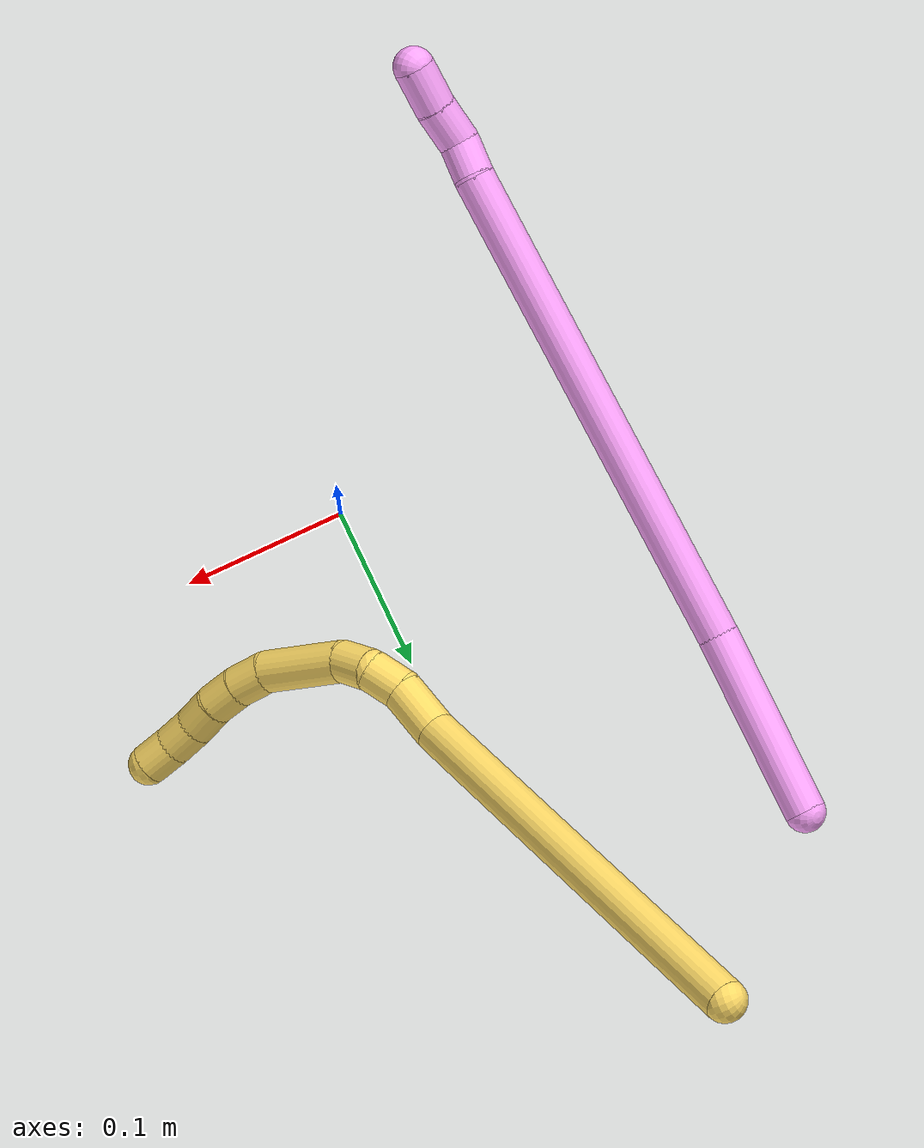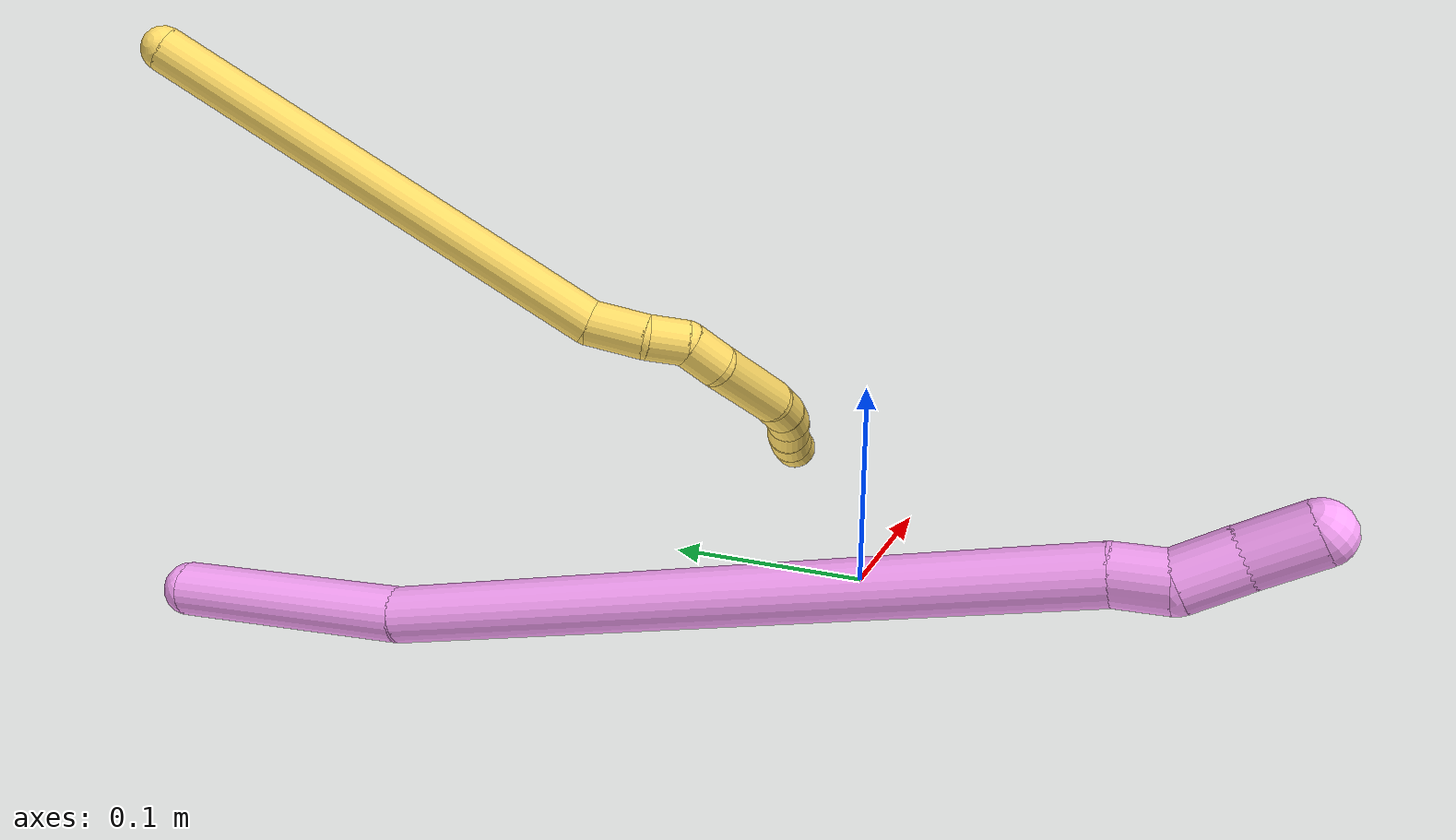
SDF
<sdf version="1.7">
 <world name="default">
  <model name="photoneo_s_sensor">
   <static>1</static>
   <pose>0 0 2 1.57079 1.57079 3.14159</pose>
   <link name="link">
    <inertial><mass>0.1</mass></inertial>
    <sensor name="sensor" type="depth">
     <update_rate>30</update_rate>
     <camera>
      <horizontal_fov>1.22</horizontal_fov>
      <image><width>1920</width><height>1200</height><format>B8G8R8</format></image>
      <clip><near>0.1</near><far>4</far></clip>
      <depth_camera><output>points</output></depth_camera>
     </camera>
     <plugin name="camera_plugin" filename="libgazebo_ros_depth_camera.so">
      <baseline>0.2</baseline>
      <alwaysOn>1</alwaysOn>
      <updateRate>0.0</updateRate>
      <cameraName>camera_ir</cameraName>
      <imageTopicName>/camera/color/image_raw</imageTopicName>
      <cameraInfoTopicName>/camera/color/camera_info</cameraInfoTopicName>
      <depthImageTopicName>/camera/depth/image_raw</depthImageTopicName>
      <depthImageCameraInfoTopicName>/camera/depth/camera_info</depthImageCameraInfoTopicName>
      <pointCloudTopicName>/camera/depth/points</pointCloudTopicName>
      <frameName>fr_optical</frameName>
      <pointCloudCutoff>0.1</pointCloudCutoff>
      <pointCloudCutoffMax>2.0</pointCloudCutoffMax>
      <distortionK1>0</distortionK1>
      <distortionK2>0</distortionK2>
      <distortionK3>0</distortionK3>
      <distortionT1>0</distortionT1>
      <distortionT2>0</distortionT2>
      <CxPrime>0</CxPrime>
      <Cx>0</Cx>
      <Cy>0</Cy>
      <focalLength>0</focalLength>
      <hackBaseline>0</hackBaseline>
     </plugin>
    </sensor>
   </link>
  </model>
  <model name="bin">
   <static>1</static>
   <link name="bottom">
    <collision name="collision-bottom">
     <pose>0 0 -0.01 0 -0 0</pose>
     <geometry><box><size>0.8 0.6 0.02</size></box></geometry>
     <surface>
      <friction><ode><mu>100</mu><mu2>100</mu2></ode></friction>
      <contact><collide_bitmask>65535</collide_bitmask></contact>
     </surface>
    </collision>
   </link>
   <link name="west_wall">
    <collision name="collision-west_wall">
     <pose>-0.41 0 0.1 0 -0 0</pose>
     <geometry><box><size>0.02 0.6 0.2</size></box></geometry>
     <surface>
      <friction><ode><mu>100</mu><mu2>100</mu2></ode></friction>
      <contact><collide_bitmask>65535</collide_bitmask></contact>
     </surface>
    </collision>
   </link>
   <link name="east_wall">
    <collision name="collision-east_wall">
     <pose>0.41 0 0.1 0 -0 0</pose>
     <geometry><box><size>0.02 0.6 0.2</size></box></geometry>
     <surface>
      <friction><ode><mu>100</mu><mu2>100</mu2></ode></friction>
      <contact><collide_bitmask>65535</collide_bitmask></contact>
     </surface>
    </collision>
   </link>
   <link name="south_wall">
    <collision name="collision-south_wall">
     <pose>0 -0.31 0.1 0 -0 0</pose>
     <geometry><box><size>0.8 0.02 0.2</size></box></geometry>
     <surface>
      <friction><ode><mu>100</mu><mu2>100</mu2></ode></friction>
      <contact><collide_bitmask>65535</collide_bitmask></contact>
     </surface>
    </collision>
   </link>
   <link name="north_wall">
    <collision name="collision-north_wall">
     <pose>0 0.31 0.1 0 -0 0</pose>
     <geometry><box><size>0.8 0.02 0.2</size></box></geometry>
     <surface>
      <friction><ode><mu>100</mu><mu2>100</mu2></ode></friction>
      <contact><collide_bitmask>65535</collide_bitmask></contact>
     </surface>
    </collision>
   </link>
  </model>
  <model name="4">
   <static>0</static>
   <link name="4">
    <collision name="collision-cylinder-e_1_1_4">
     <pose>0.042683 -0.023674 -0.031868 2.50268 0.821595 1.84259</pose>
     <geometry><cylinder><radius>0.0125</radius><length>0.116582</length></cylinder></geometry>
     <surface>
      <friction><ode><mu>1.16</mu><mu2>1.16</mu2><slip1>0</slip1><slip2>0</slip2></ode></friction>
      <contact><ode><kp>1e+06</kp><kd>1</kd><max_vel>0</max_vel><min_depth>0.001</min_depth></ode></contact>
     </surface>
    </collision>
    <visual name="visual-cylinder-e_1_1_4">
     <pose>0.042683 -0.023674 -0.031868 2.50268 0.821595 1.84259</pose>
     <geometry><cylinder><radius>0.0125</radius><length>0.116582</length></cylinder></geometry>
     <material><ambient>1 0.65098 0.996078 1</ambient></material>
    </visual>
    <collision name="collision-cylinder-e_2_4_5">
     <pose>0.212704 -0.099002 -0.132601 2.49803 0.976343 2.02043</pose>
     <geometry><cylinder><radius>0.0125</radius><length>0.307413</length></cylinder></geometry>
     <surface>
      <friction><ode><mu>1.16</mu><mu2>1.16</mu2><slip1>0</slip1><slip2>0</slip2></ode></friction>
      <contact><ode><kp>1e+06</kp><kd>1</kd><max_vel>0</max_vel><min_depth>0.001</min_depth></ode></contact>
     </surface>
    </collision>
    <visual name="visual-cylinder-e_2_4_5">
     <pose>0.212704 -0.099002 -0.132601 2.49803 0.976343 2.02043</pose>
     <geometry><cylinder><radius>0.0125</radius><length>0.307413</length></cylinder></geometry>
     <material><ambient>1 0.65098 0.996078 1</ambient></material>
    </visual>
    <collision name="collision-cylinder-e_3_5_6">
     <pose>0.348038 -0.155832 -0.20747 2.43023 0.789694 1.68549</pose>
     <geometry><cylinder><radius>0.0125</radius><length>0.022516</length></cylinder></geometry>
     <surface>
      <friction><ode><mu>1.16</mu><mu2>1.16</mu2><slip1>0</slip1><slip2>0</slip2></ode></friction>
      <contact><ode><kp>1e+06</kp><kd>1</kd><max_vel>0</max_vel><min_depth>0.001</min_depth></ode></contact>
     </surface>
    </collision>
    <visual name="visual-cylinder-e_3_5_6">
     <pose>0.348038 -0.155832 -0.20747 2.43023 0.789694 1.68549</pose>
     <geometry><cylinder><radius>0.0125</radius><length>0.022516</length></cylinder></geometry>
     <material><ambient>1 0.65098 0.996078 1</ambient></material>
    </visual>
    <collision name="collision-cylinder-e_4_6_7">
     <pose>0.36826 -0.16281 -0.216935 2.66135 1.26179 2.49476</pose>
     <geometry><cylinder><radius>0.0125</radius><length>0.025669</length></cylinder></geometry>
     <surface>
      <friction><ode><mu>1.16</mu><mu2>1.16</mu2><slip1>0</slip1><slip2>0</slip2></ode></friction>
      <contact><ode><kp>1e+06</kp><kd>1</kd><max_vel>0</max_vel><min_depth>0.001</min_depth></ode></contact>
     </surface>
    </collision>
    <visual name="visual-cylinder-e_4_6_7">
     <pose>0.36826 -0.16281 -0.216935 2.66135 1.26179 2.49476</pose>
     <geometry><cylinder><radius>0.0125</radius><length>0.025669</length></cylinder></geometry>
     <material><ambient>1 0.65098 0.996078 1</ambient></material>
    </visual>
    <collision name="collision-cylinder-e_5_7_2">
     <pose>0.393629 -0.167976 -0.22347 2.31122 1.23708 2.0325</pose>
     <geometry><cylinder><radius>0.0125</radius><length>0.027819</length></cylinder></geometry>
     <surface>
      <friction><ode><mu>1.16</mu><mu2>1.16</mu2><slip1>0</slip1><slip2>0</slip2></ode></friction>
      <contact><ode><kp>1e+06</kp><kd>1</kd><max_vel>0</max_vel><min_depth>0.001</min_depth></ode></contact>
     </surface>
    </collision>
    <visual name="visual-cylinder-e_5_7_2">
     <pose>0.393629 -0.167976 -0.22347 2.31122 1.23708 2.0325</pose>
     <geometry><cylinder><radius>0.0125</radius><length>0.027819</length></cylinder></geometry>
     <material><ambient>1 0.65098 0.996078 1</ambient></material>
    </visual>
    <collision name="collision-sphere-2">
     <pose>0.406771 -0.17134 -0.226544 0 -0 0</pose>
     <geometry><sphere><radius>0.0125</radius></sphere></geometry>
     <surface>
      <friction><ode><mu>1.16</mu><mu2>1.16</mu2><slip1>0</slip1><slip2>0</slip2></ode></friction>
      <contact><ode><kp>1e+06</kp><kd>1</kd><max_vel>0</max_vel><min_depth>0.001</min_depth></ode></contact>
     </surface>
    </collision>
    <visual name="visual-sphere-2">
     <pose>0.406771 -0.17134 -0.226544 0 -0 0</pose>
     <geometry><sphere><radius>0.0125</radius></sphere></geometry>
     <material><ambient>1 0.65098 0.996078 1</ambient></material>
    </visual>
    <collision name="collision-sphere-7">
     <pose>0.380486 -0.164613 -0.220397 0 -0 0</pose>
     <geometry><sphere><radius>0.0125</radius></sphere></geometry>
     <surface>
      <friction><ode><mu>1.16</mu><mu2>1.16</mu2><slip1>0</slip1><slip2>0</slip2></ode></friction>
      <contact><ode><kp>1e+06</kp><kd>1</kd><max_vel>0</max_vel><min_depth>0.001</min_depth></ode></contact>
     </surface>
    </collision>
    <visual name="visual-sphere-7">
     <pose>0.380486 -0.164613 -0.220397 0 -0 0</pose>
     <geometry><sphere><radius>0.0125</radius></sphere></geometry>
     <material><ambient>1 0.65098 0.996078 1</ambient></material>
    </visual>
    <collision name="collision-sphere-6">
     <pose>0.356033 -0.161006 -0.213474 0 -0 0</pose>
     <geometry><sphere><radius>0.0125</radius></sphere></geometry>
     <surface>
      <friction><ode><mu>1.16</mu><mu2>1.16</mu2><slip1>0</slip1><slip2>0</slip2></ode></friction>
      <contact><ode><kp>1e+06</kp><kd>1</kd><max_vel>0</max_vel><min_depth>0.001</min_depth></ode></contact>
     </surface>
    </collision>
    <visual name="visual-sphere-6">
     <pose>0.356033 -0.161006 -0.213474 0 -0 0</pose>
     <geometry><sphere><radius>0.0125</radius></sphere></geometry>
     <material><ambient>1 0.65098 0.996078 1</ambient></material>
    </visual>
    <collision name="collision-sphere-5">
     <pose>0.340044 -0.150657 -0.201466 0 -0 0</pose>
     <geometry><sphere><radius>0.0125</radius></sphere></geometry>
     <surface>
      <friction><ode><mu>1.16</mu><mu2>1.16</mu2><slip1>0</slip1><slip2>0</slip2></ode></friction>
      <contact><ode><kp>1e+06</kp><kd>1</kd><max_vel>0</max_vel><min_depth>0.001</min_depth></ode></contact>
     </surface>
    </collision>
    <visual name="visual-sphere-5">
     <pose>0.340044 -0.150657 -0.201466 0 -0 0</pose>
     <geometry><sphere><radius>0.0125</radius></sphere></geometry>
     <material><ambient>1 0.65098 0.996078 1</ambient></material>
    </visual>
    <collision name="collision-sphere-1">
     <geometry><sphere><radius>0.0125</radius></sphere></geometry>
     <surface>
      <friction><ode><mu>1.16</mu><mu2>1.16</mu2><slip1>0</slip1><slip2>0</slip2></ode></friction>
      <contact><ode><kp>1e+06</kp><kd>1</kd><max_vel>0</max_vel><min_depth>0.001</min_depth></ode></contact>
     </surface>
    </collision>
    <visual name="visual-sphere-1">
     <geometry><sphere><radius>0.0125</radius></sphere></geometry>
     <material><ambient>1 0.65098 0.996078 1</ambient></material>
    </visual>
    <collision name="collision-sphere-4">
     <pose>0.085365 -0.047347 -0.063737 0 -0 0</pose>
     <geometry><sphere><radius>0.0125</radius></sphere></geometry>
     <surface>
      <friction><ode><mu>1.16</mu><mu2>1.16</mu2><slip1>0</slip1><slip2>0</slip2></ode></friction>
      <contact><ode><kp>1e+06</kp><kd>1</kd><max_vel>0</max_vel><min_depth>0.001</min_depth></ode></contact>
     </surface>
    </collision>
    <visual name="visual-sphere-4">
     <pose>0.085365 -0.047347 -0.063737 0 -0 0</pose>
     <geometry><sphere><radius>0.0125</radius></sphere></geometry>
     <material><ambient>1 0.65098 0.996078 1</ambient></material>
    </visual>
    <inertial>
     <pose>0.197208 -0.091111 -0.121871 0 -0 0</pose>
     <mass>0.5</mass>
     <inertia>
      <ixx>0.000733</ixx>
      <ixy>0</ixy>
      <ixz>0</ixz>
      <iyy>0.003334</iyy>
      <iyz>0</iyz>
      <izz>-0.001265</izz>
     </inertia>
    </inertial>
   </link>
   <pose>-0.173255 0.280434 0.012441 0.188977 -0.755002 -1.25249</pose>
  </model>
  <model name="5">
   <static>0</static>
   <link name="5">
    <collision name="collision-cylinder-e_1_1_4">
     <pose>0.092211 -0.065909 -0.071535 2.39711 0.758708 1.59162</pose>
     <geometry><cylinder><radius>0.0125</radius><length>0.26806</length></cylinder></geometry>
     <surface>
      <friction><ode><mu>1.16</mu><mu2>1.16</mu2><slip1>0</slip1><slip2>0</slip2></ode></friction>
      <contact><ode><kp>1e+06</kp><kd>1</kd><max_vel>0</max_vel><min_depth>0.001</min_depth></ode></contact>
     </surface>
    </collision>
    <visual name="visual-cylinder-e_1_1_4">
     <pose>0.092211 -0.065909 -0.071535 2.39711 0.758708 1.59162</pose>
     <geometry><cylinder><radius>0.0125</radius><length>0.26806</length></cylinder></geometry>
     <material><ambient>1 0.858824 0.4 1</ambient></material>
    </visual>
    <collision name="collision-cylinder-e_2_4_5">
     <pose>0.198712 -0.135633 -0.149057 2.57423 1.10977 2.2623</pose>
     <geometry><cylinder><radius>0.0125</radius><length>0.031913</length></cylinder></geometry>
     <surface>
      <friction><ode><mu>1.16</mu><mu2>1.16</mu2><slip1>0</slip1><slip2>0</slip2></ode></friction>
      <contact><ode><kp>1e+06</kp><kd>1</kd><max_vel>0</max_vel><min_depth>0.001</min_depth></ode></contact>
     </surface>
    </collision>
    <visual name="visual-cylinder-e_2_4_5">
     <pose>0.198712 -0.135633 -0.149057 2.57423 1.10977 2.2623</pose>
     <geometry><cylinder><radius>0.0125</radius><length>0.031913</length></cylinder></geometry>
     <material><ambient>1 0.858824 0.4 1</ambient></material>
    </visual>
    <collision name="collision-cylinder-e_3_5_6">
     <pose>0.221623 -0.140282 -0.161628 3.01552 0.914587 2.88644</pose>
     <geometry><cylinder><radius>0.0125</radius><length>0.02176</length></cylinder></geometry>
     <surface>
      <friction><ode><mu>1.16</mu><mu2>1.16</mu2><slip1>0</slip1><slip2>0</slip2></ode></friction>
      <contact><ode><kp>1e+06</kp><kd>1</kd><max_vel>0</max_vel><min_depth>0.001</min_depth></ode></contact>
     </surface>
    </collision>
    <visual name="visual-cylinder-e_3_5_6">
     <pose>0.221623 -0.140282 -0.161628 3.01552 0.914587 2.88644</pose>
     <geometry><cylinder><radius>0.0125</radius><length>0.02176</length></cylinder></geometry>
     <material><ambient>1 0.858824 0.4 1</ambient></material>
    </visual>
    <collision name="collision-cylinder-e_4_6_7">
     <pose>0.235565 -0.145806 -0.177054 2.65388 0.488763 1.57304</pose>
     <geometry><cylinder><radius>0.0125</radius><length>0.022669</length></cylinder></geometry>
     <surface>
      <friction><ode><mu>1.16</mu><mu2>1.16</mu2><slip1>0</slip1><slip2>0</slip2></ode></friction>
      <contact><ode><kp>1e+06</kp><kd>1</kd><max_vel>0</max_vel><min_depth>0.001</min_depth></ode></contact>
     </surface>
    </collision>
    <visual name="visual-cylinder-e_4_6_7">
     <pose>0.235565 -0.145806 -0.177054 2.65388 0.488763 1.57304</pose>
     <geometry><cylinder><radius>0.0125</radius><length>0.022669</length></cylinder></geometry>
     <material><ambient>1 0.858824 0.4 1</ambient></material>
    </visual>
    <collision name="collision-cylinder-e_5_7_8">
     <pose>0.246418 -0.156042 -0.211405 2.92751 0.208782 1.54554</pose>
     <geometry><cylinder><radius>0.0125</radius><length>0.05337</length></cylinder></geometry>
     <surface>
      <friction><ode><mu>1.16</mu><mu2>1.16</mu2><slip1>0</slip1><slip2>0</slip2></ode></friction>
      <contact><ode><kp>1e+06</kp><kd>1</kd><max_vel>0</max_vel><min_depth>0.001</min_depth></ode></contact>
     </surface>
    </collision>
    <visual name="visual-cylinder-e_5_7_8">
     <pose>0.246418 -0.156042 -0.211405 2.92751 0.208782 1.54554</pose>
     <geometry><cylinder><radius>0.0125</radius><length>0.05337</length></cylinder></geometry>
     <material><ambient>1 0.858824 0.4 1</ambient></material>
    </visual>
    <collision name="collision-cylinder-e_6_8_9">
     <pose>0.251118 -0.16278 -0.247638 3.03093 -0.076883 -1.21393</pose>
     <geometry><cylinder><radius>0.0125</radius><length>0.021642</length></cylinder></geometry>
     <surface>
      <friction><ode><mu>1.16</mu><mu2>1.16</mu2><slip1>0</slip1><slip2>0</slip2></ode></friction>
      <contact><ode><kp>1e+06</kp><kd>1</kd><max_vel>0</max_vel><min_depth>0.001</min_depth></ode></contact>
     </surface>
    </collision>
    <visual name="visual-cylinder-e_6_8_9">
     <pose>0.251118 -0.16278 -0.247638 3.03093 -0.076883 -1.21393</pose>
     <geometry><cylinder><radius>0.0125</radius><length>0.021642</length></cylinder></geometry>
     <material><ambient>1 0.858824 0.4 1</ambient></material>
    </visual>
    <collision name="collision-cylinder-e_7_9_10">
     <pose>0.248036 -0.165092 -0.268277 3.02904 -0.221815 -2.20495</pose>
     <geometry><cylinder><radius>0.0125</radius><length>0.02046</length></cylinder></geometry>
     <surface>
      <friction><ode><mu>1.16</mu><mu2>1.16</mu2><slip1>0</slip1><slip2>0</slip2></ode></friction>
      <contact><ode><kp>1e+06</kp><kd>1</kd><max_vel>0</max_vel><min_depth>0.001</min_depth></ode></contact>
     </surface>
    </collision>
    <visual name="visual-cylinder-e_7_9_10">
     <pose>0.248036 -0.165092 -0.268277 3.02904 -0.221815 -2.20495</pose>
     <geometry><cylinder><radius>0.0125</radius><length>0.02046</length></cylinder></geometry>
     <material><ambient>1 0.858824 0.4 1</ambient></material>
    </visual>
    <collision name="collision-cylinder-e_8_10_11">
     <pose>0.242239 -0.168192 -0.287377 2.92938 -0.360924 -2.08479</pose>
     <geometry><cylinder><radius>0.0125</radius><length>0.020082</length></cylinder></geometry>
     <surface>
      <friction><ode><mu>1.16</mu><mu2>1.16</mu2><slip1>0</slip1><slip2>0</slip2></ode></friction>
      <contact><ode><kp>1e+06</kp><kd>1</kd><max_vel>0</max_vel><min_depth>0.001</min_depth></ode></contact>
     </surface>
    </collision>
    <visual name="visual-cylinder-e_8_10_11">
     <pose>0.242239 -0.168192 -0.287377 2.92938 -0.360924 -2.08479</pose>
     <geometry><cylinder><radius>0.0125</radius><length>0.020082</length></cylinder></geometry>
     <material><ambient>1 0.858824 0.4 1</ambient></material>
    </visual>
    <collision name="collision-cylinder-e_9_11_12">
     <pose>0.235824 -0.171172 -0.306098 3.03697 -0.290766 -2.45472</pose>
     <geometry><cylinder><radius>0.0125</radius><length>0.02002</length></cylinder></geometry>
     <surface>
      <friction><ode><mu>1.16</mu><mu2>1.16</mu2><slip1>0</slip1><slip2>0</slip2></ode></friction>
      <contact><ode><kp>1e+06</kp><kd>1</kd><max_vel>0</max_vel><min_depth>0.001</min_depth></ode></contact>
     </surface>
    </collision>
    <visual name="visual-cylinder-e_9_11_12">
     <pose>0.235824 -0.171172 -0.306098 3.03697 -0.290766 -2.45472</pose>
     <geometry><cylinder><radius>0.0125</radius><length>0.02002</length></cylinder></geometry>
     <material><ambient>1 0.858824 0.4 1</ambient></material>
    </visual>
    <collision name="collision-cylinder-e_10_12_2">
     <pose>0.230479 -0.172224 -0.325336 3.13631 -0.249858 -3.0995</pose>
     <geometry><cylinder><radius>0.0125</radius><length>0.020023</length></cylinder></geometry>
     <surface>
      <friction><ode><mu>1.16</mu><mu2>1.16</mu2><slip1>0</slip1><slip2>0</slip2></ode></friction>
      <contact><ode><kp>1e+06</kp><kd>1</kd><max_vel>0</max_vel><min_depth>0.001</min_depth></ode></contact>
     </surface>
    </collision>
    <visual name="visual-cylinder-e_10_12_2">
     <pose>0.230479 -0.172224 -0.325336 3.13631 -0.249858 -3.0995</pose>
     <geometry><cylinder><radius>0.0125</radius><length>0.020023</length></cylinder></geometry>
     <material><ambient>1 0.858824 0.4 1</ambient></material>
    </visual>
    <collision name="collision-sphere-2">
     <pose>0.228003 -0.172276 -0.335036 0 -0 0</pose>
     <geometry><sphere><radius>0.0125</radius></sphere></geometry>
     <surface>
      <friction><ode><mu>1.16</mu><mu2>1.16</mu2><slip1>0</slip1><slip2>0</slip2></ode></friction>
      <contact><ode><kp>1e+06</kp><kd>1</kd><max_vel>0</max_vel><min_depth>0.001</min_depth></ode></contact>
     </surface>
    </collision>
    <visual name="visual-sphere-2">
     <pose>0.228003 -0.172276 -0.335036 0 -0 0</pose>
     <geometry><sphere><radius>0.0125</radius></sphere></geometry>
     <material><ambient>1 0.858824 0.4 1</ambient></material>
    </visual>
    <collision name="collision-sphere-12">
     <pose>0.232954 -0.172173 -0.315635 0 -0 0</pose>
     <geometry><sphere><radius>0.0125</radius></sphere></geometry>
     <surface>
      <friction><ode><mu>1.16</mu><mu2>1.16</mu2><slip1>0</slip1><slip2>0</slip2></ode></friction>
      <contact><ode><kp>1e+06</kp><kd>1</kd><max_vel>0</max_vel><min_depth>0.001</min_depth></ode></contact>
     </surface>
    </collision>
    <visual name="visual-sphere-12">
     <pose>0.232954 -0.172173 -0.315635 0 -0 0</pose>
     <geometry><sphere><radius>0.0125</radius></sphere></geometry>
     <material><ambient>1 0.858824 0.4 1</ambient></material>
    </visual>
    <collision name="collision-sphere-11">
     <pose>0.238694 -0.17017 -0.29656 0 -0 0</pose>
     <geometry><sphere><radius>0.0125</radius></sphere></geometry>
     <surface>
      <friction><ode><mu>1.16</mu><mu2>1.16</mu2><slip1>0</slip1><slip2>0</slip2></ode></friction>
      <contact><ode><kp>1e+06</kp><kd>1</kd><max_vel>0</max_vel><min_depth>0.001</min_depth></ode></contact>
     </surface>
    </collision>
    <visual name="visual-sphere-11">
     <pose>0.238694 -0.17017 -0.29656 0 -0 0</pose>
     <geometry><sphere><radius>0.0125</radius></sphere></geometry>
     <material><ambient>1 0.858824 0.4 1</ambient></material>
    </visual>
    <collision name="collision-sphere-10">
     <pose>0.245785 -0.166213 -0.278194 0 -0 0</pose>
     <geometry><sphere><radius>0.0125</radius></sphere></geometry>
     <surface>
      <friction><ode><mu>1.16</mu><mu2>1.16</mu2><slip1>0</slip1><slip2>0</slip2></ode></friction>
      <contact><ode><kp>1e+06</kp><kd>1</kd><max_vel>0</max_vel><min_depth>0.001</min_depth></ode></contact>
     </surface>
    </collision>
    <visual name="visual-sphere-10">
     <pose>0.245785 -0.166213 -0.278194 0 -0 0</pose>
     <geometry><sphere><radius>0.0125</radius></sphere></geometry>
     <material><ambient>1 0.858824 0.4 1</ambient></material>
    </visual>
    <collision name="collision-sphere-9">
     <pose>0.250287 -0.163971 -0.258361 0 -0 0</pose>
     <geometry><sphere><radius>0.0125</radius></sphere></geometry>
     <surface>
      <friction><ode><mu>1.16</mu><mu2>1.16</mu2><slip1>0</slip1><slip2>0</slip2></ode></friction>
      <contact><ode><kp>1e+06</kp><kd>1</kd><max_vel>0</max_vel><min_depth>0.001</min_depth></ode></contact>
     </surface>
    </collision>
    <visual name="visual-sphere-9">
     <pose>0.250287 -0.163971 -0.258361 0 -0 0</pose>
     <geometry><sphere><radius>0.0125</radius></sphere></geometry>
     <material><ambient>1 0.858824 0.4 1</ambient></material>
    </visual>
    <collision name="collision-sphere-4">
     <pose>0.184421 -0.131818 -0.14307 0 -0 0</pose>
     <geometry><sphere><radius>0.0125</radius></sphere></geometry>
     <surface>
      <friction><ode><mu>1.16</mu><mu2>1.16</mu2><slip1>0</slip1><slip2>0</slip2></ode></friction>
      <contact><ode><kp>1e+06</kp><kd>1</kd><max_vel>0</max_vel><min_depth>0.001</min_depth></ode></contact>
     </surface>
    </collision>
    <visual name="visual-sphere-4">
     <pose>0.184421 -0.131818 -0.14307 0 -0 0</pose>
     <geometry><sphere><radius>0.0125</radius></sphere></geometry>
     <material><ambient>1 0.858824 0.4 1</ambient></material>
    </visual>
    <collision name="collision-sphere-1">
     <geometry><sphere><radius>0.0125</radius></sphere></geometry>
     <surface>
      <friction><ode><mu>1.16</mu><mu2>1.16</mu2><slip1>0</slip1><slip2>0</slip2></ode></friction>
      <contact><ode><kp>1e+06</kp><kd>1</kd><max_vel>0</max_vel><min_depth>0.001</min_depth></ode></contact>
     </surface>
    </collision>
    <visual name="visual-sphere-1">
     <geometry><sphere><radius>0.0125</radius></sphere></geometry>
     <material><ambient>1 0.858824 0.4 1</ambient></material>
    </visual>
    <collision name="collision-sphere-8">
     <pose>0.251949 -0.161588 -0.236915 0 -0 0</pose>
     <geometry><sphere><radius>0.0125</radius></sphere></geometry>
     <surface>
      <friction><ode><mu>1.16</mu><mu2>1.16</mu2><slip1>0</slip1><slip2>0</slip2></ode></friction>
      <contact><ode><kp>1e+06</kp><kd>1</kd><max_vel>0</max_vel><min_depth>0.001</min_depth></ode></contact>
     </surface>
    </collision>
    <visual name="visual-sphere-8">
     <pose>0.251949 -0.161588 -0.236915 0 -0 0</pose>
     <geometry><sphere><radius>0.0125</radius></sphere></geometry>
     <material><ambient>1 0.858824 0.4 1</ambient></material>
    </visual>
    <collision name="collision-sphere-5">
     <pose>0.213002 -0.139447 -0.155043 0 -0 0</pose>
     <geometry><sphere><radius>0.0125</radius></sphere></geometry>
     <surface>
      <friction><ode><mu>1.16</mu><mu2>1.16</mu2><slip1>0</slip1><slip2>0</slip2></ode></friction>
      <contact><ode><kp>1e+06</kp><kd>1</kd><max_vel>0</max_vel><min_depth>0.001</min_depth></ode></contact>
     </surface>
    </collision>
    <visual name="visual-sphere-5">
     <pose>0.213002 -0.139447 -0.155043 0 -0 0</pose>
     <geometry><sphere><radius>0.0125</radius></sphere></geometry>
     <material><ambient>1 0.858824 0.4 1</ambient></material>
    </visual>
    <collision name="collision-sphere-6">
     <pose>0.230243 -0.141117 -0.168214 0 -0 0</pose>
     <geometry><sphere><radius>0.0125</radius></sphere></geometry>
     <surface>
      <friction><ode><mu>1.16</mu><mu2>1.16</mu2><slip1>0</slip1><slip2>0</slip2></ode></friction>
      <contact><ode><kp>1e+06</kp><kd>1</kd><max_vel>0</max_vel><min_depth>0.001</min_depth></ode></contact>
     </surface>
    </collision>
    <visual name="visual-sphere-6">
     <pose>0.230243 -0.141117 -0.168214 0 -0 0</pose>
     <geometry><sphere><radius>0.0125</radius></sphere></geometry>
     <material><ambient>1 0.858824 0.4 1</ambient></material>
    </visual>
    <collision name="collision-sphere-7">
     <pose>0.240887 -0.150496 -0.185895 0 -0 0</pose>
     <geometry><sphere><radius>0.0125</radius></sphere></geometry>
     <surface>
      <friction><ode><mu>1.16</mu><mu2>1.16</mu2><slip1>0</slip1><slip2>0</slip2></ode></friction>
      <contact><ode><kp>1e+06</kp><kd>1</kd><max_vel>0</max_vel><min_depth>0.001</min_depth></ode></contact>
     </surface>
    </collision>
    <visual name="visual-sphere-7">
     <pose>0.240887 -0.150496 -0.185895 0 -0 0</pose>
     <geometry><sphere><radius>0.0125</radius></sphere></geometry>
     <material><ambient>1 0.858824 0.4 1</ambient></material>
    </visual>
    <inertial>
     <pose>0.158168 -0.107671 -0.144016 0 -0 0</pose>
     <mass>0.5</mass>
     <inertia>
      <ixx>0.001173</ixx>
      <ixy>0</ixy>
      <ixz>0</ixz>
      <iyy>0.001959</iyy>
      <iyz>0</iyz>
      <izz>-0.000345</izz>
     </inertia>
    </inertial>
   </link>
   <pose>-0.063797 0.370421 0.2611 1.15056 -0.175668 -1.58944</pose>
  </model>
 </world>
</sdf>
